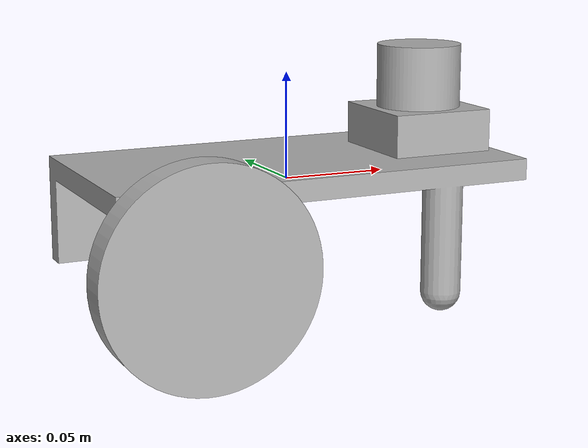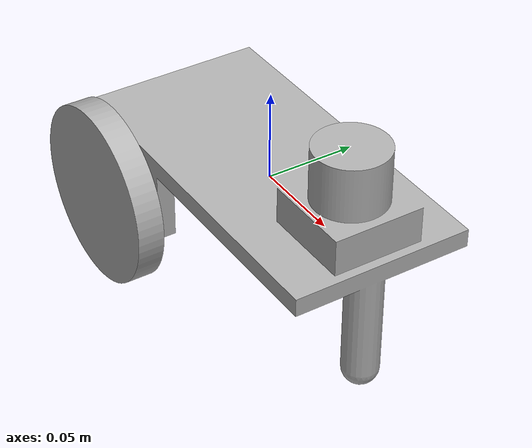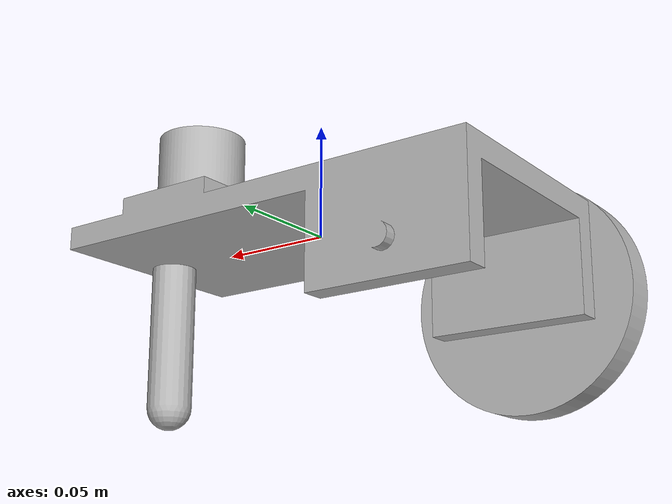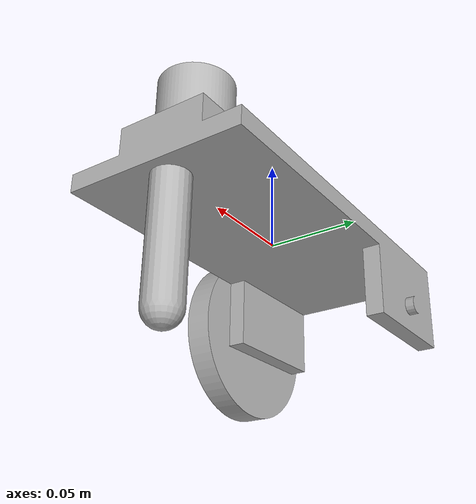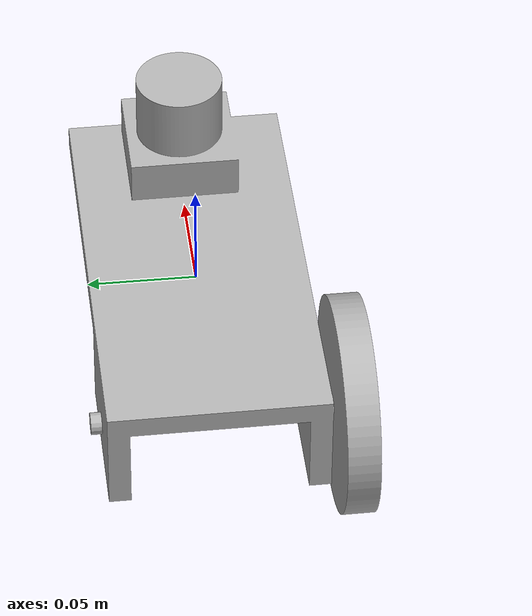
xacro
<?xml version="1.0" ?>
<robot name="new_1" xmlns:xacro="http://www.ros.org/wiki/xacro">

<xacro:include filename="$(find new_1_description)/urdf/materials.xacro" />
<xacro:include filename="$(find new_1_description)/urdf/new_1.trans" />
<xacro:include filename="$(find new_1_description)/urdf/new_1.gazebo" />
<link name="base_link">
  <inertial>
    <origin xyz="0.005231405657218727 4.833328347358262e-17 0.0001600786858819347" rpy="0 0 0"/>
    <mass value="2.5850061422858865"/>
    <inertia ixx="0.00307" iyy="0.011276" izz="0.012817" ixy="0.0" iyz="-0.0" ixz="-0.00059"/>
  </inertial>
  <visual>
    <origin xyz="0 0 0" rpy="0 0 0"/>
    <geometry>
      <mesh filename="package://new_1_description/meshes/base_link.stl" scale="0.001 0.001 0.001"/>
    </geometry>
    <material name="silver"/>
  </visual>
  <collision>
    <origin xyz="0 0 0" rpy="0 0 0"/>
    <geometry>
      <mesh filename="package://new_1_description/meshes/base_link.stl" scale="0.001 0.001 0.001"/>
    </geometry>
  </collision>
</link>

<link name="right_wheel_1">
  <inertial>
    <origin xyz="4.163336342344337e-17 0.007499999999999979 6.938893903907228e-18" rpy="0 0 0"/>
    <mass value="0.9248063374004952"/>
    <inertia ixx="0.000595" iyy="0.001156" izz="0.000595" ixy="0.0" iyz="0.0" ixz="-0.0"/>
  </inertial>
  <visual>
    <origin xyz="0.065 -0.055 0.025" rpy="0 0 0"/>
    <geometry>
      <mesh filename="package://new_1_description/meshes/right_wheel_1.stl" scale="0.001 0.001 0.001"/>
    </geometry>
    <material name="silver"/>
  </visual>
  <collision>
    <origin xyz="0.065 -0.055 0.025" rpy="0 0 0"/>
    <geometry>
      <mesh filename="package://new_1_description/meshes/right_wheel_1.stl" scale="0.001 0.001 0.001"/>
    </geometry>
  </collision>
</link>

<link name="left_wheel_1">
  <inertial>
    <origin xyz="4.163336342344337e-17 -0.0075 1.3877787807814457e-17" rpy="0 0 0"/>
    <mass value="0.9248063374004952"/>
    <inertia ixx="0.000595" iyy="0.001156" izz="0.000595" ixy="-0.0" iyz="0.0" ixz="-0.0"/>
  </inertial>
  <visual>
    <origin xyz="0.065 0.055 0.025" rpy="0 0 0"/>
    <geometry>
      <mesh filename="package://new_1_description/meshes/left_wheel_1.stl" scale="0.001 0.001 0.001"/>
    </geometry>
    <material name="silver"/>
  </visual>
  <collision>
    <origin xyz="0.065 0.055 0.025" rpy="0 0 0"/>
    <geometry>
      <mesh filename="package://new_1_description/meshes/left_wheel_1.stl" scale="0.001 0.001 0.001"/>
    </geometry>
  </collision>
</link>

<link name="lidar_1">
  <inertial>
    <origin xyz="-4.163336342344337e-17 0.0 0.015" rpy="0 0 0"/>
    <mass value="0.2959380279681584"/>
    <inertia ixx="5.2e-05" iyy="5.2e-05" izz="5.9e-05" ixy="0.0" iyz="0.0" ixz="0.0"/>
  </inertial>
  <visual>
    <origin xyz="-0.07 -0.0 -0.03" rpy="0 0 0"/>
    <geometry>
      <mesh filename="package://new_1_description/meshes/lidar_1.stl" scale="0.001 0.001 0.001"/>
    </geometry>
    <material name="silver"/>
  </visual>
  <collision>
    <origin xyz="-0.07 -0.0 -0.03" rpy="0 0 0"/>
    <geometry>
      <mesh filename="package://new_1_description/meshes/lidar_1.stl" scale="0.001 0.001 0.001"/>
    </geometry>
  </collision>
</link>

<joint name="Rev4" type="continuous">
  <origin xyz="-0.065 0.055 -0.025" rpy="0 0 0"/>
  <parent link="base_link"/>
  <child link="right_wheel_1"/>
  <axis xyz="0.0 1.0 0.0"/>
</joint>

<joint name="Rev5" type="continuous">
  <origin xyz="-0.065 -0.055 -0.025" rpy="0 0 0"/>
  <parent link="base_link"/>
  <child link="left_wheel_1"/>
  <axis xyz="0.0 1.0 0.0"/>
</joint>

<joint name="Rigid6" type="fixed">
  <origin xyz="0.07 0.0 0.03" rpy="0 0 0"/>
  <parent link="base_link"/>
  <child link="lidar_1"/>
</joint>

</robot>

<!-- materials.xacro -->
<robot name="new_1" xmlns:xacro="http://www.ros.org/wiki/xacro" >

<material name="silver">
  <color rgba="0.700 0.700 0.700 1.000"/>
</material>

</robot>

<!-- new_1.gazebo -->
<robot name="new_1" xmlns:xacro="http://www.ros.org/wiki/xacro" >

<xacro:property name="body_color" value="Gazebo/Silver" />

<gazebo>
  <plugin name="control" filename="libgazebo_ros_control.so"/>
</gazebo>
<gazebo reference="base_link">
  <material>${body_color}</material>
  <mu1>3500</mu1>
  <mu2>3500</mu2>
  <selfCollide>true</selfCollide>
  <gravity>true</gravity>
</gazebo>

<gazebo reference="right_wheel_1">
  <material>${body_color}</material>
  <mu1>3500</mu1>
  <mu2>3500</mu2>
  <selfCollide>true</selfCollide>
</gazebo>

<gazebo reference="left_wheel_1">
  <material>${body_color}</material>
  <mu1>3500</mu1>
  <mu2>3500</mu2>
  <selfCollide>true</selfCollide>
</gazebo>

<gazebo reference="lidar_1">
  <material>${body_color}</material>
  <mu1>0.2</mu1>
  <mu2>0.2</mu2>
  <selfCollide>true</selfCollide>
</gazebo>
<gazebo>
  <plugin name="differential_drive_controller" filename="libgazebo_ros_diff_drive.so">

    <!-- Plugin update rate in Hz -->
    <updateRate>${update_rate}</updateRate>

    <!-- Name of left joint, defaults to `left_joint` -->
    <leftJoint>base_link_left_wheel_joint</leftJoint>

    <!-- Name of right joint, defaults to `right_joint` -->
    <rightJoint>base_link_right_wheel_joint</rightJoint>

    <!-- The distance from the center of one wheel to the other, in meters, defaults to 0.34 m -->
    <wheelSeparation>0.5380</wheelSeparation>

    <!-- Diameter of the wheels, in meters, defaults to 0.15 m -->
    <wheelDiameter>0.2410</wheelDiameter>

    <!-- Wheel acceleration, in rad/s^2, defaults to 0.0 rad/s^2 -->
    <wheelAcceleration>1.0</wheelAcceleration>

    <!-- Maximum torque which the wheels can produce, in Nm, defaults to 5 Nm -->
    <wheelTorque>20</wheelTorque>

    <!-- Topic to receive geometry_msgs/Twist message commands, defaults to `cmd_vel` -->
    <commandTopic>cmd_vel</commandTopic>

    <!-- Topic to publish nav_msgs/Odometry messages, defaults to `odom` -->
    <odometryTopic>odom</odometryTopic>

    <!-- Odometry frame, defaults to `odom` -->
    <odometryFrame>odom</odometryFrame>

    <!-- Robot frame to calculate odometry from, defaults to `base_footprint` -->
    <robotBaseFrame>base_footprint</robotBaseFrame>

    <!-- Odometry source, 0 for ENCODER, 1 for WORLD, defaults to WORLD -->
    <odometrySource>1</odometrySource>

    <!-- Set to true to publish transforms for the wheel links, defaults to false -->
    <publishWheelTF>true</publishWheelTF>

    <!-- Set to true to publish transforms for the odometry, defaults to true -->
    <publishOdom>true</publishOdom>

    <!-- Set to true to publish sensor_msgs/JointState on /joint_states for the wheel joints, defaults to false -->
    <publishWheelJointState>true</publishWheelJointState>

    <!-- Set to true to swap right and left wheels, defaults to true -->
    <legacyMode>false</legacyMode>
  </plugin>
</gazebo>
</robot>
